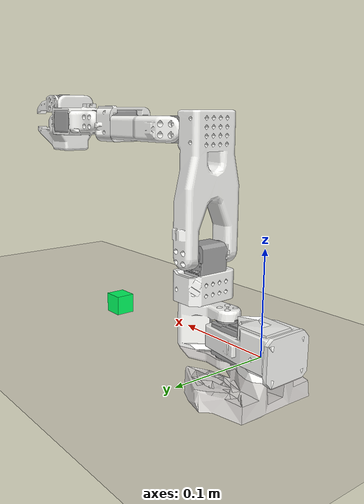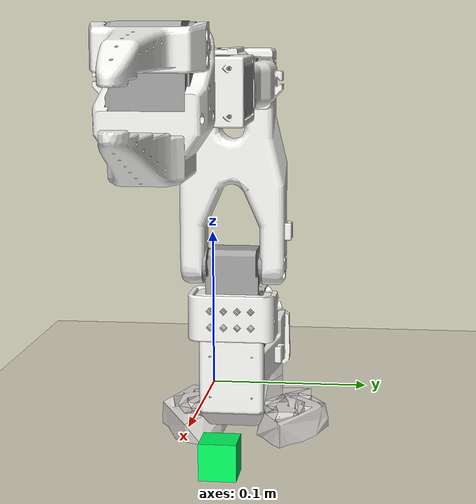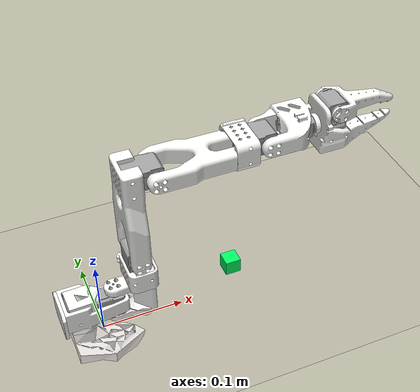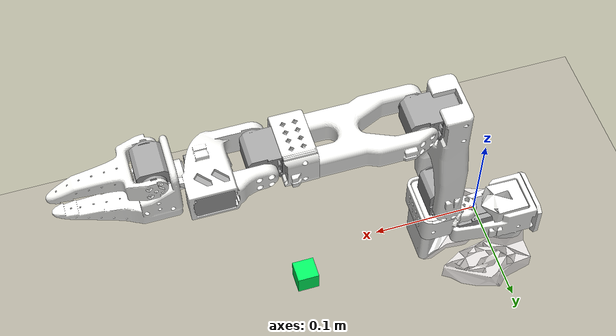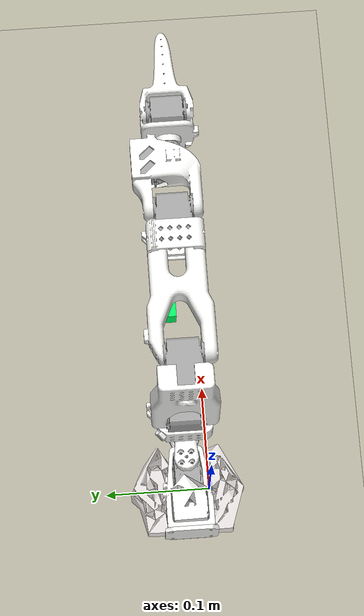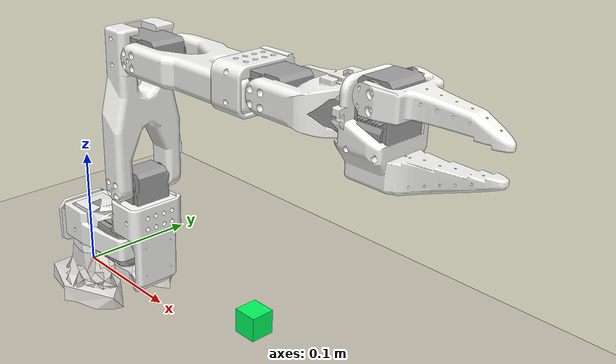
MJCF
<mujoco model="so101_local_grasp_teleop">
  <include file="so101_grounded_for_teleop.xml"/>

  <option integrator="implicitfast" impratio="20" noslip_iterations="5" cone="elliptic">
    <flag multiccd="enable"/>
  </option>

  <statistic center="0.18 0.03 0.18" extent="0.55"/>

  <visual>
    <headlight diffuse="0.35 0.35 0.35" ambient="0.18 0.18 0.18" specular="0 0 0"/>
    <global azimuth="120" elevation="-20"/>
  </visual>

  <asset>
    <!-- Evaluation-like light gray tabletop / floor: approximately #B8ADA9 -->
    <material name="eval_table_gray" rgba="0.722 0.678 0.663 1"/>
  </asset>

  <worldbody>
    <light
      pos="0.2 -0.2 1.2"
      dir="-0.1 0.1 -1"
      directional="true"
      diffuse="0.45 0.45 0.45"
      ambient="0.05 0.05 0.05"
      specular="0 0 0"
    />

    <geom
      name="floor"
      type="plane"
      size="0 0 0.05"
      material="eval_table_gray"
      friction="1 0.3 0.1"
    />

    <!-- Focus body for fixed teleop cameras -->
    <body name="workspace_focus" pos="0.18 0.03 0.03">
      <site name="workspace_focus_site" pos="0 0 0" size="0.004" rgba="0 0 0 0"/>
    </body>

    <!-- 2 cm cube -->
    <body name="green_cube_body" pos="0.18 0.03 0.01">
      <joint name="green_cube_joint" type="free" frictionloss="0.01"/>
      <inertial pos="0 0 0" mass="0.004" diaginertia="0.000001 0.000001 0.000001"/>
      <geom
        name="green_cube_geom"
        type="box"
        size="0.01 0.01 0.01"
        rgba="0 0.984 0.373 1"
        friction="1 0.3 0.1"
        solimp="2 1 0.01"
        solref="0.01 1"
        condim="4"
      />
    </body>

    <!-- Mocap target used for HW3-style Cartesian teleop -->
    <body mocap="true" name="mocap_target" pos="0 0 0">
      <site
        name="mocap_target_site"
        pos="0 0 0"
        size="0.004"
        type="sphere"
        rgba="0 0 0 0"
      />
    </body>

    <!-- Teleop cameras -->
    <camera
      name="angle"
      pos="0.43 -0.35 0.34"
      fovy="55"
      mode="targetbody"
      target="workspace_focus"
    />
    <camera
      name="side"
      pos="-0.02 -0.48 0.20"
      fovy="50"
      mode="targetbody"
      target="workspace_focus"
    />
    <camera
      name="top"
      pos="0.18 0.03 0.62"
      fovy="48"
      mode="targetbody"
      target="workspace_focus"
    />
  </worldbody>

  <!-- Weld the mocap target to the SO101 gripper site -->
  <equality>
    <weld site1="mocap_target_site" site2="gripper"/>
  </equality>
</mujoco>

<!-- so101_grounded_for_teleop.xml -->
<mujoco model="so101_new_calib">
    <compiler angle="radian" meshdir="/home/frainer/Desktop/FS26/RobotLearning/R2D2-RL/third_party/robot-control-stack/assets/robots/so101/assets" autolimits="true" />
    <default>
        <default class="so101_new_calib">
            <joint frictionloss="0.1" armature="0.005" />
            <position kp="50" dampratio="1" />
            <default class="visual">
                <geom type="mesh" contype="0" conaffinity="0" group="2" />
            </default>
            <default class="collision">
                <geom group="3" />
            </default>
        </default>
        <default class="sts3215">
            <geom contype="0" conaffinity="0" />
            <joint damping="0.60" frictionloss="0.052" armature="0.028" />
            <position kp="17.8" kv="0.0" forcerange="-3.35 3.35" />
        </default>
        <default class="backlash">
            <!-- +/- 0.5° of backlash -->
            <joint damping="0.01" frictionloss="0" armature="0.01" limited="true" range="-0.008726646259971648 0.008726646259971648" />
        </default>
    </default>
    <asset>
        <mesh file="rotation_pitch_so101_v1.stl" />
        <mesh file="moving_jaw_so101_v1.stl" />
        <mesh file="sts3215_03a_v1.stl" />
        <mesh file="motor_holder_so101_wrist_v1.stl" />
        <mesh file="wrist_roll_follower_so101_v1.stl" />
        <mesh file="base_so101_v2.stl" />
        <mesh file="under_arm_so101_v1.stl" />
        <mesh file="wrist_roll_pitch_so101_v2.stl" />
        <mesh file="waveshare_mounting_plate_so101_v2.stl" />
        <mesh file="sts3215_03a_no_horn_v1.stl" />
        <mesh file="motor_holder_so101_base_v1.stl" />
        <mesh file="base_motor_holder_so101_v1.stl" />
        <mesh file="upper_arm_so101_v1.stl" />
        <material name="base_motor_holder_so101_v1_material" rgba="0.964706 0.964706 0.952941 1" />
        <material name="base_so101_v2_material" rgba="0.964706 0.964706 0.952941 1" />
        <material name="sts3215_03a_v1_material" rgba="0.627451 0.627451 0.627451 1" />
        <material name="waveshare_mounting_plate_so101_v2_material" rgba="0.964706 0.964706 0.952941 1" />
        <material name="motor_holder_so101_base_v1_material" rgba="0.964706 0.964706 0.952941 1" />
        <material name="rotation_pitch_so101_v1_material" rgba="0.964706 0.964706 0.952941 1" />
        <material name="upper_arm_so101_v1_material" rgba="0.964706 0.964706 0.952941 1" />
        <material name="under_arm_so101_v1_material" rgba="0.964706 0.964706 0.952941 1" />
        <material name="motor_holder_so101_wrist_v1_material" rgba="0.964706 0.964706 0.952941 1" />
        <material name="sts3215_03a_no_horn_v1_material" rgba="0.627451 0.627451 0.627451 1" />
        <material name="wrist_roll_pitch_so101_v2_material" rgba="0.964706 0.964706 0.952941 1" />
        <material name="wrist_roll_follower_so101_v1_material" rgba="0.964706 0.964706 0.952941 1" />
        <material name="moving_jaw_so101_v1_material" rgba="0.964706 0.964706 0.952941 1" />
    </asset>
    <worldbody>
        <!-- Link base -->
        <body name="base" pos="0 0 -0.06" quat="1 0 0 0">
            <body name="base2" pos="0 0 0" quat="0.70710678 0 0 0.70710678" childclass="so101_new_calib">
                <inertial pos="0.020739 0.00204287 0.065966" mass="0.147" fullinertia="0.000136117 0.000114686 0.000130364 4.59787e-07 9.75275e-08 -4.97151e-06" />
                <!-- Part base_motor_holder_so101_v1 -->
                <geom type="mesh" class="visual" pos="0.0206915 0.0221255 0.0300817" quat="0.707107 0.707107 7.85046e-16 8.68107e-16" mesh="base_motor_holder_so101_v1" material="base_motor_holder_so101_v1_material" />
                <!-- Part base_so101_v2 -->
                <geom type="mesh" class="visual" pos="0.0207909 0.0221255 0.0300817" quat="0.707107 0.707107 -0 -0" mesh="base_so101_v2" material="base_so101_v2_material" />
                <!-- Part sts3215_03a_v1 -->
                <geom type="mesh" class="visual" pos="0.0207909 -0.0105745 0.0761817" quat="0.707107 -7.69919e-16 8.95976e-16 -0.707107" mesh="sts3215_03a_v1" material="sts3215_03a_v1_material" />
                <!-- Part waveshare_mounting_plate_so101_v2 -->
                <geom type="mesh" class="visual" pos="0.0205915 0.0467435 0.0798817" quat="0.707107 0.707107 -3.34318e-15 5.1276e-15" mesh="waveshare_mounting_plate_so101_v2" material="waveshare_mounting_plate_so101_v2_material" />
                <!-- Frame base -->
                <site group="3" name="base" pos="0.020791 0.0157608 0.0324817" quat="0 1 0 0" />
                <!-- Link shoulder -->
                <body name="shoulder" pos="0.0207909 -0.0230745 0.0948817" quat="7.88629e-16 -0.707107 -0.707107 7.69003e-16">
                    <!-- Joint from base to shoulder -->
                    <joint axis="0 0 1" name="1" type="hinge" range="-1.9198621771937616 1.9198621771937634" class="sts3215" />
                    <inertial pos="-0.0307604 -1.66727e-05 -0.0252713" mass="0.100006" fullinertia="8.3759e-05 8.10403e-05 2.39783e-05 7.55525e-08 -1.16342e-06 1.54663e-07" />
                    <!-- Part sts3215_03a_v1_2 -->
                    <geom type="mesh" class="visual" pos="-0.0303992 0.000422241 -0.0417" quat="0.5 0.5 0.5 -0.5" mesh="sts3215_03a_v1" material="sts3215_03a_v1_material" />
                    <geom type="mesh" class="collision" pos="-0.0303992 0.000422241 -0.0417" quat="0.5 0.5 0.5 -0.5" mesh="sts3215_03a_v1" material="sts3215_03a_v1_material" />
                    <!-- Part motor_holder_so101_base_v1 -->
                    <geom type="mesh" class="visual" pos="-0.0675992 -0.000177759 0.0158499" quat="0.5 0.5 -0.5 0.5" mesh="motor_holder_so101_base_v1" material="motor_holder_so101_base_v1_material" />
                    <geom type="mesh" class="collision" pos="-0.0675992 -0.000177759 0.0158499" quat="0.5 0.5 -0.5 0.5" mesh="motor_holder_so101_base_v1" material="motor_holder_so101_base_v1_material" />
                    <!-- Part rotation_pitch_so101_v1 -->
                    <geom type="mesh" class="visual" pos="0.0122008 2.22413e-05 0.0464" quat="0.707107 -0.707107 0 0" mesh="rotation_pitch_so101_v1" material="rotation_pitch_so101_v1_material" />
                    <geom type="mesh" class="collision" pos="0.0122008 2.22413e-05 0.0464" quat="0.707107 -0.707107 0 0" mesh="rotation_pitch_so101_v1" material="rotation_pitch_so101_v1_material" />
                    <!-- Link upper_arm -->
                    <body name="upper_arm" pos="-0.0303992 -0.0182778 -0.0542" quat="0.5 -0.5 -0.5 -0.5">
                        <!-- Joint from shoulder to upper_arm -->
                        <joint axis="0 0 1" name="2" type="hinge" range="-1.7453292519943269 1.7453292519943322" class="sts3215" />
                        <inertial pos="-0.0898471 -0.00838224 0.0184089" mass="0.103" fullinertia="4.08002e-05 0.000147318 0.000142487 -1.97819e-05 -4.03016e-08 8.97326e-09" />
                        <!-- Part sts3215_03a_v1_3 -->
                        <geom type="mesh" class="visual" pos="-0.11257 -0.0155 0.0187" quat="4.31775e-16 -0.707107 0.707107 -2.94392e-16" mesh="sts3215_03a_v1" material="sts3215_03a_v1_material" />
                        <geom type="mesh" class="collision" pos="-0.11257 -0.0155 0.0187" quat="4.31775e-16 -0.707107 0.707107 -2.94392e-16" mesh="sts3215_03a_v1" material="sts3215_03a_v1_material" />
                        <!-- Part upper_arm_so101_v1 -->
                        <geom type="mesh" class="visual" pos="-0.065085 0.012 0.0182" quat="0 1 0 0" mesh="upper_arm_so101_v1" material="upper_arm_so101_v1_material" />
                        <geom type="mesh" class="collision" pos="-0.065085 0.012 0.0182" quat="0 1 0 0" mesh="upper_arm_so101_v1" material="upper_arm_so101_v1_material" />
                        <!-- Link lower_arm -->
                        <body name="lower_arm" pos="-0.11257 -0.028 2.46331e-16" quat="0.707107 -2.94392e-16 -3.85906e-16 0.707107">
                            <!-- Joint from upper_arm to lower_arm -->
                            <joint axis="0 0 1" name="3" type="hinge" range="-1.7453292519943295 1.5707963267948966" class="sts3215" />
                            <inertial pos="-0.0980701 0.00324376 0.0182831" mass="0.104" fullinertia="2.87438e-05 0.000159844 0.00014529 7.41152e-06 1.26409e-06 -4.90188e-08" />
                            <!-- Part under_arm_so101_v1 -->
                            <geom type="mesh" class="visual" pos="-0.0648499 -0.032 0.0182" quat="0 1 0 0" mesh="under_arm_so101_v1" material="under_arm_so101_v1_material" />
                            <geom type="mesh" class="collision" pos="-0.0648499 -0.032 0.0182" quat="0 1 0 0" mesh="under_arm_so101_v1" material="under_arm_so101_v1_material" />
                            <!-- Part motor_holder_so101_wrist_v1 -->
                            <geom type="mesh" class="visual" pos="-0.0648499 -0.032 0.018" quat="3.3891e-16 -1 -1.9186e-15 6.33174e-16" mesh="motor_holder_so101_wrist_v1" material="motor_holder_so101_wrist_v1_material" />
                            <geom type="mesh" class="collision" pos="-0.0648499 -0.032 0.018" quat="3.3891e-16 -1 -1.9186e-15 6.33174e-16" mesh="motor_holder_so101_wrist_v1" material="motor_holder_so101_wrist_v1_material" />
                            <!-- Part sts3215_03a_v1_4 -->
                            <geom type="mesh" class="visual" pos="-0.1224 0.0052 0.0187" quat="8.32667e-16 -1.56949e-15 -1 5.55112e-16" mesh="sts3215_03a_v1" material="sts3215_03a_v1_material" />
                            <geom type="mesh" class="collision" pos="-0.1224 0.0052 0.0187" quat="8.32667e-16 -1.56949e-15 -1 5.55112e-16" mesh="sts3215_03a_v1" material="sts3215_03a_v1_material" />
                            <!-- Link wrist -->
                            <body name="wrist" pos="-0.1349 0.0052 1.65232e-16" quat="0.707107 1.31614e-15 9.90601e-17 -0.707107">
                                <!-- Joint from lower_arm to wrist -->
                                <joint axis="0 0 1" name="4" type="hinge" range="-1.6580627969561903 1.658062781833036" class="sts3215" />
                                <inertial pos="-0.000103312 -0.0386143 0.0281156" mass="0.079" fullinertia="3.68263e-05 2.5391e-05 2.1e-05 1.7893e-08 -5.28128e-08 3.6412e-06" />
                                <!-- Part sts3215_03a_no_horn_v1 -->
                                <geom type="mesh" class="visual" pos="5.55112e-17 -0.0424 0.0306" quat="0.5 0.5 0.5 -0.5" mesh="sts3215_03a_no_horn_v1" material="sts3215_03a_no_horn_v1_material" />
                                <geom type="mesh" class="collision" pos="5.55112e-17 -0.0424 0.0306" quat="0.5 0.5 0.5 -0.5" mesh="sts3215_03a_no_horn_v1" material="sts3215_03a_no_horn_v1_material" />
                                <!-- Part wrist_roll_pitch_so101_v2 -->
                                <geom type="mesh" class="visual" pos="0 -0.028 0.0181" quat="0.5 -0.5 -0.5 -0.5" mesh="wrist_roll_pitch_so101_v2" material="wrist_roll_pitch_so101_v2_material" />
                                <geom type="mesh" class="collision" pos="0 -0.028 0.0181" quat="0.5 -0.5 -0.5 -0.5" mesh="wrist_roll_pitch_so101_v2" material="wrist_roll_pitch_so101_v2_material" />
                                <!-- Link gripper -->
                                <body name="gripper_body" pos="0 -0.0611 0.0181" quat="3.31663e-08 -3.31663e-08 -0.707107 -0.707107">
                                    <!-- Joint from wrist to gripper -->
                                    <joint axis="0 0 1" name="5" type="hinge" range="-2.7925268969992407 2.7925267093826136" class="sts3215" />
                                    <inertial pos="0.000213627 0.000245138 -0.025187" mass="0.087" fullinertia="2.75087e-05 4.33657e-05 3.45059e-05 -3.35241e-07 -5.7352e-06 -5.17847e-08" />
                                    <!-- Part sts3215_03a_v1_5 -->
                                    <geom type="mesh" class="visual" pos="0.0077 0.0001 -0.0234" quat="0.707107 -0.707107 6.48145e-15 1.58472e-15" mesh="sts3215_03a_v1" material="sts3215_03a_v1_material" />
                                    <geom type="mesh" class="collision" pos="0.0077 0.0001 -0.0234" quat="0.707107 -0.707107 6.48145e-15 1.58472e-15" mesh="sts3215_03a_v1" material="sts3215_03a_v1_material" />
                                    <!-- Part wrist_roll_follower_so101_v1 -->
                                    <geom type="mesh" class="visual" pos="5.55112e-17 -0.000218214 0.000949706" quat="0 1 0 0" mesh="wrist_roll_follower_so101_v1" material="wrist_roll_follower_so101_v1_material" />
                                    <geom type="mesh" class="collision" pos="5.55112e-17 -0.000218214 0.000949706" quat="0 1 0 0" mesh="wrist_roll_follower_so101_v1" material="wrist_roll_follower_so101_v1_material" />
                                    <!-- Frame gripper -->
                                    <site group="3" name="gripper" pos="-0.0079 -0.000218121 -0.0981274" quat="0.5 -0.5 0.5 -0.5" />
                                    <!-- Link moving_jaw_so101_v1 -->
                                    <body name="moving_jaw_so101_v1" pos="0.0202 0.0188 -0.0234" quat="0.707107 0.707107 1.47485e-15 -6.52758e-15">
                                        <!-- Joint from gripper to moving_jaw_so101_v1 -->
                                        <joint axis="0 0 1" name="6" type="hinge" range="-0.17453292519943295 1.7453292519943295" class="sts3215" />
                                        <inertial pos="-0.00157495 -0.0300244 0.0192755" mass="0.012" fullinertia="6.61427e-06 1.89032e-06 5.28738e-06 -3.19807e-07 -5.90717e-09 -1.09945e-07" />
                                        <!-- Part moving_jaw_so101_v1 -->
                                        <geom type="mesh" class="visual" pos="-5.55112e-17 -1.94746e-17 0.0189" quat="1 -0 1.86338e-16 6.90343e-24" mesh="moving_jaw_so101_v1" material="moving_jaw_so101_v1_material" />
                                        <geom type="mesh" class="collision" pos="-5.55112e-17 -1.94746e-17 0.0189" quat="1 -0 1.86338e-16 6.90343e-24" mesh="moving_jaw_so101_v1" material="moving_jaw_so101_v1_material" />
                                    </body>
                                </body>
                            </body>
                        </body>
                    </body>
                </body>
            </body>
        </body>
    </worldbody>
    <actuator>
        <position class="sts3215" name="1" joint="1" forcerange="-3.35 3.35" ctrlrange="-1.91986 1.91986"/>
        <position class="sts3215" name="2" joint="2" forcerange="-3.35 3.35" ctrlrange="-1.74533 1.74533"/>
        <position class="sts3215" name="3" joint="3" forcerange="-3.35 3.35" ctrlrange="-1.69 1.69"/>
        <position class="sts3215" name="4" joint="4" forcerange="-3.35 3.35" ctrlrange="-1.65806 1.65806"/>
        <position class="sts3215" name="5" joint="5" forcerange="-3.35 3.35" ctrlrange="-2.74385 2.84121"/>
        <position class="sts3215" name="6" joint="6" forcerange="-3.35 3.35" ctrlrange="-0.17453 1.74533"/>
    </actuator>
    <equality />
</mujoco>
